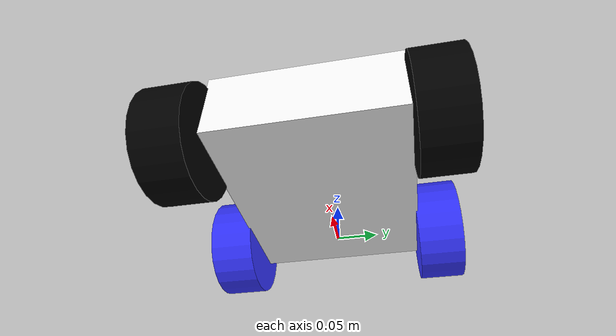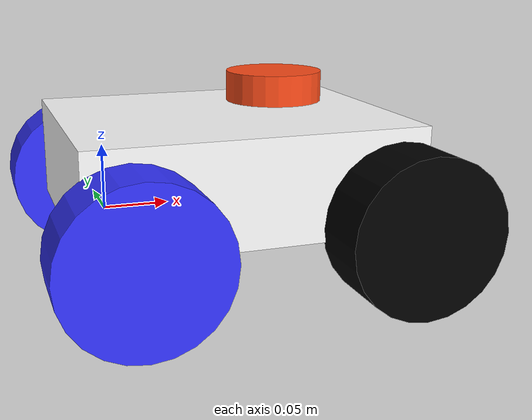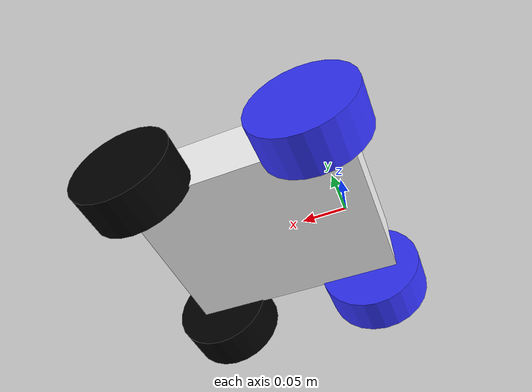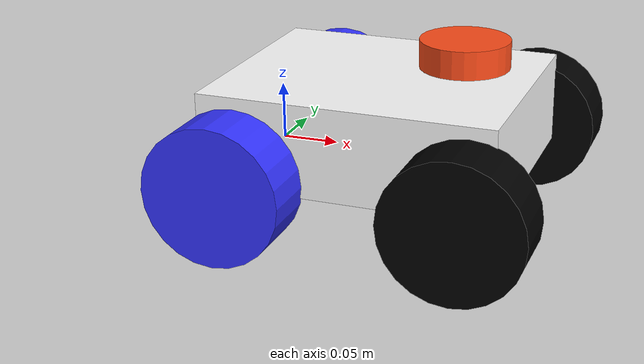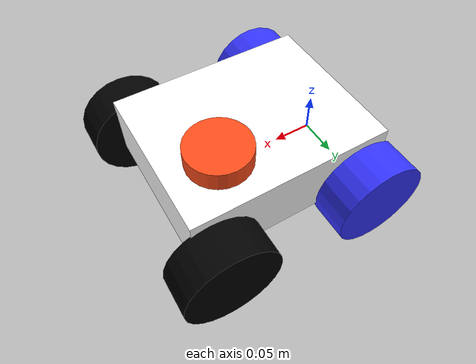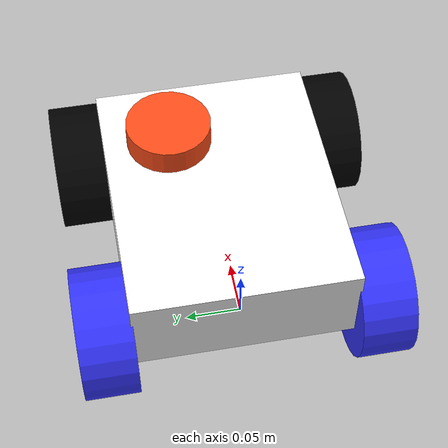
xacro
<?xml version="1.0"?>
<robot xmlns:xacro="http://www.ros.org/wiki/xacro"  name="robot">

    <xacro:include filename="robot_core.xacro"/>

    <xacro:include filename="lidar.xacro"/>

</robot>

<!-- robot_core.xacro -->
<robot xmlns:xacro="http://www.ros.org/wiki/xacro">

    <xacro:include filename="inertial_macros.xacro" />

    <material name="white">
        <color rgba="1 1 1 1" />
    </material>

    <material name="orange">
        <color rgba="1 0.3 0.1 1" />
    </material>

    <material name="blue">
        <color rgba="0.2 0.2 1 1" />
    </material>

    <material name="black">
        <color rgba="0 0 0 1" />
    </material>

    <!-- BASE LINK -->

    <link name="base_link">

    </link>

    <!-- CHASSIS LINK -->

    <joint name="chassis_joint" type="fixed">
        <parent link="base_link"/>
        <child link="chassis"/>
        <origin xyz="-0.03 0 0"/>
    </joint>

    <link name="chassis">
        <visual>
            <origin xyz="0.125 0 0.03"/>
            <geometry>
                <box size="0.255 0.205 0.08"/>
            </geometry>
            <material name="white"/>
        </visual>
        <collision>
            <origin xyz="0.125 0 0.03"/>
            <geometry>
                <box size="0.255 0.205 0.08"/>
            </geometry>
        </collision>
        <xacro:inertial_box mass="2.0" x="0.255" y="0.205" z="0.08">
            <origin xyz="0.125 0 0.03" rpy="0 0 0"/>
        </xacro:inertial_box>
    </link>

    <gazebo reference="chassis">
        <material>Gazebo/White</material>
    </gazebo>

    <!-- LEFT WHEEL LINK -->

    <joint name="left_wheel_joint" type="continuous">
        <parent link="base_link"/>
        <child link="left_wheel" />
        <origin xyz="0 0.1255 0" rpy="-${pi/2} 0 0"/>
        <axis xyz="0 0 1"/>
    </joint>

    <link name="left_wheel">
        <visual>
            <geometry>
                <cylinder radius="0.06" length="0.05"/>
            </geometry>
            <material name="blue" />
        </visual>
        <collision>
            <geometry>
                <cylinder radius="0.06" length="0.05"/>
            </geometry>
        </collision>
        <xacro:inertial_cylinder mass="0.15" length="0.05" radius="0.06">
            <origin xyz="0 0 0" rpy="0 0 0"/>
        </xacro:inertial_cylinder>
    </link>

    <gazebo reference="left_wheel">
        <material>Gazebo/Blue</material>
    </gazebo>

    <!-- RIGHT WHEEL LINK -->

    <joint name="right_wheel_joint" type="continuous">
        <parent link="base_link"/>
        <child link="right_wheel" />
        <origin xyz="0 -0.1255 0" rpy="${pi/2} 0 0"/>
        <axis xyz="0 0 -1"/>
    </joint>

    <link name="right_wheel">
        <visual>
            <geometry>
                <cylinder radius="0.06" length="0.05"/>
            </geometry>
            <material name="blue" />
        </visual>
        <collision>
            <geometry>
                <cylinder radius="0.06" length="0.05"/>
            </geometry>
        </collision>
        <xacro:inertial_cylinder mass="0.15" length="0.05" radius="0.06">
            <origin xyz="0 0 0" rpy="0 0 0"/>
        </xacro:inertial_cylinder>
    </link>

    <gazebo reference="right_wheel">
        <material>Gazebo/Blue</material>
    </gazebo>

    <!-- FRONT LEFT WHEEL LINK -->

    <joint name="front_left_wheel_joint" type="fixed">
        <parent link="base_link"/>
        <child link="front_left_wheel" />
        <origin xyz="0.2 0.1255 0" rpy="-${pi/2} 0 0"/>
        <axis xyz="0 0 1"/>
    </joint>

    <link name="front_left_wheel">
        <visual>
            <geometry>
                <cylinder radius="0.06" length="0.05"/>
            </geometry>
            <material name="black" />
        </visual>
        <collision>
            <geometry>
                <cylinder radius="0.06" length="0.05"/>
            </geometry>
        </collision>
        <xacro:inertial_cylinder mass="0.15" length="0.05" radius="0.06">
            <origin xyz="0 0 0" rpy="0 0 0"/>
        </xacro:inertial_cylinder>
    </link>

    <gazebo reference="front_left_wheel">
        <material>Gazebo/Black</material>
        <mu1 value="0.001"/>
        <mu2 value="0.001"/>
    </gazebo>

    <!-- FRONT RIGHT WHEEL LINK -->

    <joint name="front_right_wheel_joint" type="fixed">
        <parent link="base_link"/>
        <child link="front_right_wheel" />
        <origin xyz="0.2 -0.1255 0" rpy="${pi/2} 0 0"/>
        <axis xyz="0 0 -1"/>
    </joint>

    <link name="front_right_wheel">
        <visual>
            <geometry>
                <cylinder radius="0.06" length="0.05"/>
            </geometry>
            <material name="black" />
        </visual>
        <collision>
            <geometry>
                <cylinder radius="0.06" length="0.05"/>
            </geometry>
        </collision>
        <xacro:inertial_cylinder mass="0.15" length="0.05" radius="0.06">
            <origin xyz="0 0 0" rpy="0 0 0"/>
        </xacro:inertial_cylinder>
    </link>

    <gazebo reference="front_right_wheel">
        <material>Gazebo/Black</material>
        <mu1 value="0.001"/>
        <mu2 value="0.001"/>
    </gazebo>

</robot>

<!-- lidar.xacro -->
<robot xmlns:xacro="http://www.ros.org/wiki/xacro">

    <joint name="laser_joint" type="fixed">
        <parent link="chassis"/>
        <child link="laser_frame"/>
        <origin xyz="0.185 0.04 0.08" rpy="0 0 0"/>

    </joint>

    <link name="laser_frame" >
        <visual>
            <geometry>
                <cylinder radius="0.04" length="0.03"/>
            </geometry>
            <material name="orange" />
        </visual>
        <collision>
            <geometry>
                <cylinder radius="0.04" length="0.03"/>
            </geometry>
        </collision>
        <xacro:inertial_cylinder mass="0.15" length="0.05" radius="0.06">
            <origin xyz="0 0 0" rpy="0 0 0"/>
        </xacro:inertial_cylinder>
    </link>

</robot>
